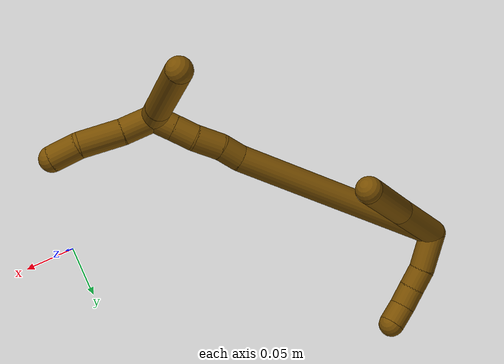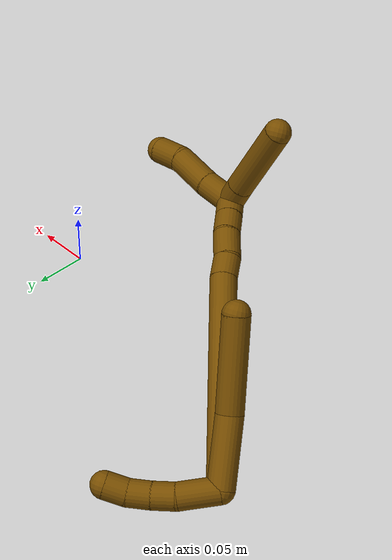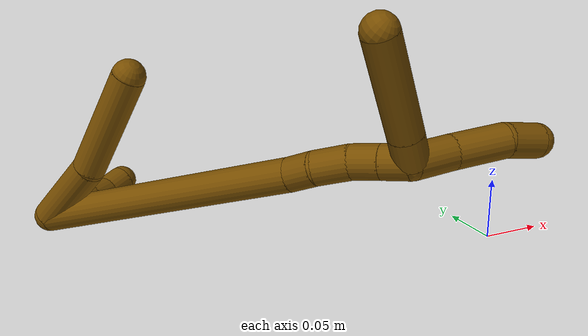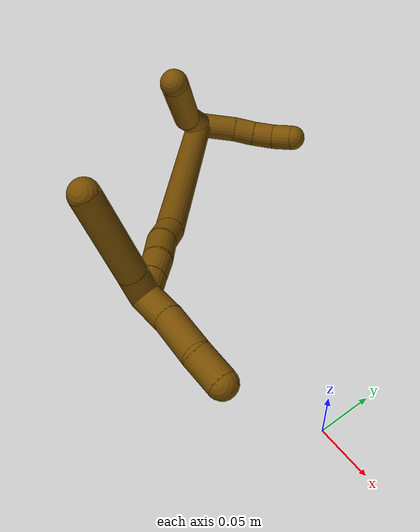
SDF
<sdf version="1.7">
 <world name="default">
  <model name="12">
   <static>0</static>
   <link name="12">
    <collision name="collision-cylinder-e_1_2_8">
     <pose>0.005411 -0.002132 0.031578 0.06741 0.169322 0.005723</pose>
     <geometry><cylinder><radius>0.0125</radius><length>0.064219</length></cylinder></geometry>
     <surface>
      <friction><ode><mu>1.16</mu><mu2>1.16</mu2><slip1>0</slip1><slip2>0</slip2></ode></friction>
      <contact><ode><kp>1e+06</kp><kd>1</kd><max_vel>0</max_vel><min_depth>0.001</min_depth></ode></contact>
     </surface>
    </collision>
    <visual name="visual-cylinder-e_1_2_8">
     <pose>0.005411 -0.002132 0.031578 0.06741 0.169322 0.005723</pose>
     <geometry><cylinder><radius>0.0125</radius><length>0.064219</length></cylinder></geometry>
     <material><ambient>0.466667 0.301961 0 1</ambient></material>
    </visual>
    <collision name="collision-cylinder-e_2_8_6">
     <pose>0.01679 0.003321 0.104947 -0.17955 0.139604 -0.012587</pose>
     <geometry><cylinder><radius>0.0125</radius><length>0.085781</length></cylinder></geometry>
     <surface>
      <friction><ode><mu>1.16</mu><mu2>1.16</mu2><slip1>0</slip1><slip2>0</slip2></ode></friction>
      <contact><ode><kp>1e+06</kp><kd>1</kd><max_vel>0</max_vel><min_depth>0.001</min_depth></ode></contact>
     </surface>
    </collision>
    <visual name="visual-cylinder-e_2_8_6">
     <pose>0.01679 0.003321 0.104947 -0.17955 0.139604 -0.012587</pose>
     <geometry><cylinder><radius>0.0125</radius><length>0.085781</length></cylinder></geometry>
     <material><ambient>0.466667 0.301961 0 1</ambient></material>
    </visual>
    <collision name="collision-cylinder-e_1_2_9">
     <pose>0.016402 0.005351 -0.00739 -2.51492 1.06314 -2.13436</pose>
     <geometry><cylinder><radius>0.0125</radius><length>0.037538</length></cylinder></geometry>
     <surface>
      <friction><ode><mu>1.16</mu><mu2>1.16</mu2><slip1>0</slip1><slip2>0</slip2></ode></friction>
      <contact><ode><kp>1e+06</kp><kd>1</kd><max_vel>0</max_vel><min_depth>0.001</min_depth></ode></contact>
     </surface>
    </collision>
    <visual name="visual-cylinder-e_1_2_9">
     <pose>0.016402 0.005351 -0.00739 -2.51492 1.06314 -2.13436</pose>
     <geometry><cylinder><radius>0.0125</radius><length>0.037538</length></cylinder></geometry>
     <material><ambient>0.466667 0.301961 0 1</ambient></material>
    </visual>
    <collision name="collision-cylinder-e_2_9_10">
     <pose>0.042832 0.012464 -0.017302 -2.53153 1.27315 -2.33628</pose>
     <geometry><cylinder><radius>0.0125</radius><length>0.020979</length></cylinder></geometry>
     <surface>
      <friction><ode><mu>1.16</mu><mu2>1.16</mu2><slip1>0</slip1><slip2>0</slip2></ode></friction>
      <contact><ode><kp>1e+06</kp><kd>1</kd><max_vel>0</max_vel><min_depth>0.001</min_depth></ode></contact>
     </surface>
    </collision>
    <visual name="visual-cylinder-e_2_9_10">
     <pose>0.042832 0.012464 -0.017302 -2.53153 1.27315 -2.33628</pose>
     <geometry><cylinder><radius>0.0125</radius><length>0.020979</length></cylinder></geometry>
     <material><ambient>0.466667 0.301961 0 1</ambient></material>
    </visual>
    <collision name="collision-cylinder-e_3_10_11">
     <pose>0.06298 0.016624 -0.021461 -2.17007 1.29142 -1.91919</pose>
     <geometry><cylinder><radius>0.0125</radius><length>0.021057</length></cylinder></geometry>
     <surface>
      <friction><ode><mu>1.16</mu><mu2>1.16</mu2><slip1>0</slip1><slip2>0</slip2></ode></friction>
      <contact><ode><kp>1e+06</kp><kd>1</kd><max_vel>0</max_vel><min_depth>0.001</min_depth></ode></contact>
     </surface>
    </collision>
    <visual name="visual-cylinder-e_3_10_11">
     <pose>0.06298 0.016624 -0.021461 -2.17007 1.29142 -1.91919</pose>
     <geometry><cylinder><radius>0.0125</radius><length>0.021057</length></cylinder></geometry>
     <material><ambient>0.466667 0.301961 0 1</ambient></material>
    </visual>
    <collision name="collision-cylinder-e_4_11_5">
     <pose>0.082876 0.021905 -0.022441 -1.34669 1.27705 -1.06918</pose>
     <geometry><cylinder><radius>0.0125</radius><length>0.020427</length></cylinder></geometry>
     <surface>
      <friction><ode><mu>1.16</mu><mu2>1.16</mu2><slip1>0</slip1><slip2>0</slip2></ode></friction>
      <contact><ode><kp>1e+06</kp><kd>1</kd><max_vel>0</max_vel><min_depth>0.001</min_depth></ode></contact>
     </surface>
    </collision>
    <visual name="visual-cylinder-e_4_11_5">
     <pose>0.082876 0.021905 -0.022441 -1.34669 1.27705 -1.06918</pose>
     <geometry><cylinder><radius>0.0125</radius><length>0.020427</length></cylinder></geometry>
     <material><ambient>0.466667 0.301961 0 1</ambient></material>
    </visual>
    <collision name="collision-cylinder-e_1_2_12">
     <pose>0.039592 -0.054525 0.081046 0.592211 0.385082 0.118812</pose>
     <geometry><cylinder><radius>0.0125</radius><length>0.210798</length></cylinder></geometry>
     <surface>
      <friction><ode><mu>1.16</mu><mu2>1.16</mu2><slip1>0</slip1><slip2>0</slip2></ode></friction>
      <contact><ode><kp>1e+06</kp><kd>1</kd><max_vel>0</max_vel><min_depth>0.001</min_depth></ode></contact>
     </surface>
    </collision>
    <visual name="visual-cylinder-e_1_2_12">
     <pose>0.039592 -0.054525 0.081046 0.592211 0.385082 0.118812</pose>
     <geometry><cylinder><radius>0.0125</radius><length>0.210798</length></cylinder></geometry>
     <material><ambient>0.466667 0.301961 0 1</ambient></material>
    </visual>
    <collision name="collision-cylinder-e_2_12_13">
     <pose>0.081498 -0.114027 0.171123 0.503733 0.220873 0.057054</pose>
     <geometry><cylinder><radius>0.0125</radius><length>0.021135</length></cylinder></geometry>
     <surface>
      <friction><ode><mu>1.16</mu><mu2>1.16</mu2><slip1>0</slip1><slip2>0</slip2></ode></friction>
      <contact><ode><kp>1e+06</kp><kd>1</kd><max_vel>0</max_vel><min_depth>0.001</min_depth></ode></contact>
     </surface>
    </collision>
    <visual name="visual-cylinder-e_2_12_13">
     <pose>0.081498 -0.114027 0.171123 0.503733 0.220873 0.057054</pose>
     <geometry><cylinder><radius>0.0125</radius><length>0.021135</length></cylinder></geometry>
     <material><ambient>0.466667 0.301961 0 1</ambient></material>
    </visual>
    <collision name="collision-cylinder-e_3_13_14">
     <pose>0.089181 -0.125746 0.19016 0.592854 0.418549 0.129554</pose>
     <geometry><cylinder><radius>0.0125</radius><length>0.026413</length></cylinder></geometry>
     <surface>
      <friction><ode><mu>1.16</mu><mu2>1.16</mu2><slip1>0</slip1><slip2>0</slip2></ode></friction>
      <contact><ode><kp>1e+06</kp><kd>1</kd><max_vel>0</max_vel><min_depth>0.001</min_depth></ode></contact>
     </surface>
    </collision>
    <visual name="visual-cylinder-e_3_13_14">
     <pose>0.089181 -0.125746 0.19016 0.592854 0.418549 0.129554</pose>
     <geometry><cylinder><radius>0.0125</radius><length>0.026413</length></cylinder></geometry>
     <material><ambient>0.466667 0.301961 0 1</ambient></material>
    </visual>
    <collision name="collision-cylinder-e_4_14_15">
     <pose>0.097833 -0.139415 0.207585 0.751208 0.312931 0.124253</pose>
     <geometry><cylinder><radius>0.0125</radius><length>0.021336</length></cylinder></geometry>
     <surface>
      <friction><ode><mu>1.16</mu><mu2>1.16</mu2><slip1>0</slip1><slip2>0</slip2></ode></friction>
      <contact><ode><kp>1e+06</kp><kd>1</kd><max_vel>0</max_vel><min_depth>0.001</min_depth></ode></contact>
     </surface>
    </collision>
    <visual name="visual-cylinder-e_4_14_15">
     <pose>0.097833 -0.139415 0.207585 0.751208 0.312931 0.124253</pose>
     <geometry><cylinder><radius>0.0125</radius><length>0.021336</length></cylinder></geometry>
     <material><ambient>0.466667 0.301961 0 1</ambient></material>
    </visual>
    <collision name="collision-cylinder-e_5_15_1">
     <pose>0.10441 -0.153015 0.221921 0.767413 0.330085 0.134282</pose>
     <geometry><cylinder><radius>0.0125</radius><length>0.020318</length></cylinder></geometry>
     <surface>
      <friction><ode><mu>1.16</mu><mu2>1.16</mu2><slip1>0</slip1><slip2>0</slip2></ode></friction>
      <contact><ode><kp>1e+06</kp><kd>1</kd><max_vel>0</max_vel><min_depth>0.001</min_depth></ode></contact>
     </surface>
    </collision>
    <visual name="visual-cylinder-e_5_15_1">
     <pose>0.10441 -0.153015 0.221921 0.767413 0.330085 0.134282</pose>
     <geometry><cylinder><radius>0.0125</radius><length>0.020318</length></cylinder></geometry>
     <material><ambient>0.466667 0.301961 0 1</ambient></material>
    </visual>
    <collision name="collision-cylinder-e_1_1_16">
     <pose>0.121954 -0.163289 0.233572 0.650277 1.17538 0.441832</pose>
     <geometry><cylinder><radius>0.0125</radius><length>0.030886</length></cylinder></geometry>
     <surface>
      <friction><ode><mu>1.16</mu><mu2>1.16</mu2><slip1>0</slip1><slip2>0</slip2></ode></friction>
      <contact><ode><kp>1e+06</kp><kd>1</kd><max_vel>0</max_vel><min_depth>0.001</min_depth></ode></contact>
     </surface>
    </collision>
    <visual name="visual-cylinder-e_1_1_16">
     <pose>0.121954 -0.163289 0.233572 0.650277 1.17538 0.441832</pose>
     <geometry><cylinder><radius>0.0125</radius><length>0.030886</length></cylinder></geometry>
     <material><ambient>0.466667 0.301961 0 1</ambient></material>
    </visual>
    <collision name="collision-cylinder-e_2_16_17">
     <pose>0.154027 -0.17303 0.246197 0.661263 1.05955 0.396714</pose>
     <geometry><cylinder><radius>0.0125</radius><length>0.040871</length></cylinder></geometry>
     <surface>
      <friction><ode><mu>1.16</mu><mu2>1.16</mu2><slip1>0</slip1><slip2>0</slip2></ode></friction>
      <contact><ode><kp>1e+06</kp><kd>1</kd><max_vel>0</max_vel><min_depth>0.001</min_depth></ode></contact>
     </surface>
    </collision>
    <visual name="visual-cylinder-e_2_16_17">
     <pose>0.154027 -0.17303 0.246197 0.661263 1.05955 0.396714</pose>
     <geometry><cylinder><radius>0.0125</radius><length>0.040871</length></cylinder></geometry>
     <material><ambient>0.466667 0.301961 0 1</ambient></material>
    </visual>
    <collision name="collision-cylinder-e_3_17_4">
     <pose>0.184953 -0.18419 0.255684 1.26301 1.18861 0.918155</pose>
     <geometry><cylinder><radius>0.0125</radius><length>0.028243</length></cylinder></geometry>
     <surface>
      <friction><ode><mu>1.16</mu><mu2>1.16</mu2><slip1>0</slip1><slip2>0</slip2></ode></friction>
      <contact><ode><kp>1e+06</kp><kd>1</kd><max_vel>0</max_vel><min_depth>0.001</min_depth></ode></contact>
     </surface>
    </collision>
    <visual name="visual-cylinder-e_3_17_4">
     <pose>0.184953 -0.18419 0.255684 1.26301 1.18861 0.918155</pose>
     <geometry><cylinder><radius>0.0125</radius><length>0.028243</length></cylinder></geometry>
     <material><ambient>0.466667 0.301961 0 1</ambient></material>
    </visual>
    <collision name="collision-cylinder-e_1_1_18">
     <pose>0.102856 -0.153417 0.237119 -0.648096 -0.436508 0.148716</pose>
     <geometry><cylinder><radius>0.0125</radius><length>0.022925</length></cylinder></geometry>
     <surface>
      <friction><ode><mu>1.16</mu><mu2>1.16</mu2><slip1>0</slip1><slip2>0</slip2></ode></friction>
      <contact><ode><kp>1e+06</kp><kd>1</kd><max_vel>0</max_vel><min_depth>0.001</min_depth></ode></contact>
     </surface>
    </collision>
    <visual name="visual-cylinder-e_1_1_18">
     <pose>0.102856 -0.153417 0.237119 -0.648096 -0.436508 0.148716</pose>
     <geometry><cylinder><radius>0.0125</radius><length>0.022925</length></cylinder></geometry>
     <material><ambient>0.466667 0.301961 0 1</ambient></material>
    </visual>
    <collision name="collision-cylinder-e_2_18_3">
     <pose>0.080886 -0.126317 0.272933 -0.647648 -0.460439 0.157007</pose>
     <geometry><cylinder><radius>0.0125</radius><length>0.077075</length></cylinder></geometry>
     <surface>
      <friction><ode><mu>1.16</mu><mu2>1.16</mu2><slip1>0</slip1><slip2>0</slip2></ode></friction>
      <contact><ode><kp>1e+06</kp><kd>1</kd><max_vel>0</max_vel><min_depth>0.001</min_depth></ode></contact>
     </surface>
    </collision>
    <visual name="visual-cylinder-e_2_18_3">
     <pose>0.080886 -0.126317 0.272933 -0.647648 -0.460439 0.157007</pose>
     <geometry><cylinder><radius>0.0125</radius><length>0.077075</length></cylinder></geometry>
     <material><ambient>0.466667 0.301961 0 1</ambient></material>
    </visual>
    <collision name="collision-sphere-3">
     <pose>0.063763 -0.105488 0.300467 0 -0 0</pose>
     <geometry><sphere><radius>0.0125</radius></sphere></geometry>
     <surface>
      <friction><ode><mu>1.16</mu><mu2>1.16</mu2><slip1>0</slip1><slip2>0</slip2></ode></friction>
      <contact><ode><kp>1e+06</kp><kd>1</kd><max_vel>0</max_vel><min_depth>0.001</min_depth></ode></contact>
     </surface>
    </collision>
    <visual name="visual-sphere-3">
     <pose>0.063763 -0.105488 0.300467 0 -0 0</pose>
     <geometry><sphere><radius>0.0125</radius></sphere></geometry>
     <material><ambient>0.466667 0.301961 0 1</ambient></material>
    </visual>
    <collision name="collision-sphere-11">
     <pose>0.073101 0.019021 -0.023099 0 -0 0</pose>
     <geometry><sphere><radius>0.0125</radius></sphere></geometry>
     <surface>
      <friction><ode><mu>1.16</mu><mu2>1.16</mu2><slip1>0</slip1><slip2>0</slip2></ode></friction>
      <contact><ode><kp>1e+06</kp><kd>1</kd><max_vel>0</max_vel><min_depth>0.001</min_depth></ode></contact>
     </surface>
    </collision>
    <visual name="visual-sphere-11">
     <pose>0.073101 0.019021 -0.023099 0 -0 0</pose>
     <geometry><sphere><radius>0.0125</radius></sphere></geometry>
     <material><ambient>0.466667 0.301961 0 1</ambient></material>
    </visual>
    <collision name="collision-sphere-10">
     <pose>0.05286 0.014227 -0.019824 0 -0 0</pose>
     <geometry><sphere><radius>0.0125</radius></sphere></geometry>
     <surface>
      <friction><ode><mu>1.16</mu><mu2>1.16</mu2><slip1>0</slip1><slip2>0</slip2></ode></friction>
      <contact><ode><kp>1e+06</kp><kd>1</kd><max_vel>0</max_vel><min_depth>0.001</min_depth></ode></contact>
     </surface>
    </collision>
    <visual name="visual-sphere-10">
     <pose>0.05286 0.014227 -0.019824 0 -0 0</pose>
     <geometry><sphere><radius>0.0125</radius></sphere></geometry>
     <material><ambient>0.466667 0.301961 0 1</ambient></material>
    </visual>
    <collision name="collision-sphere-6">
     <pose>0.022758 0.010907 0.146738 0 -0 0</pose>
     <geometry><sphere><radius>0.0125</radius></sphere></geometry>
     <surface>
      <friction><ode><mu>1.16</mu><mu2>1.16</mu2><slip1>0</slip1><slip2>0</slip2></ode></friction>
      <contact><ode><kp>1e+06</kp><kd>1</kd><max_vel>0</max_vel><min_depth>0.001</min_depth></ode></contact>
     </surface>
    </collision>
    <visual name="visual-sphere-6">
     <pose>0.022758 0.010907 0.146738 0 -0 0</pose>
     <geometry><sphere><radius>0.0125</radius></sphere></geometry>
     <material><ambient>0.466667 0.301961 0 1</ambient></material>
    </visual>
    <collision name="collision-sphere-9">
     <pose>0.032804 0.010702 -0.014781 0 -0 0</pose>
     <geometry><sphere><radius>0.0125</radius></sphere></geometry>
     <surface>
      <friction><ode><mu>1.16</mu><mu2>1.16</mu2><slip1>0</slip1><slip2>0</slip2></ode></friction>
      <contact><ode><kp>1e+06</kp><kd>1</kd><max_vel>0</max_vel><min_depth>0.001</min_depth></ode></contact>
     </surface>
    </collision>
    <visual name="visual-sphere-9">
     <pose>0.032804 0.010702 -0.014781 0 -0 0</pose>
     <geometry><sphere><radius>0.0125</radius></sphere></geometry>
     <material><ambient>0.466667 0.301961 0 1</ambient></material>
    </visual>
    <collision name="collision-sphere-2">
     <geometry><sphere><radius>0.0125</radius></sphere></geometry>
     <surface>
      <friction><ode><mu>1.16</mu><mu2>1.16</mu2><slip1>0</slip1><slip2>0</slip2></ode></friction>
      <contact><ode><kp>1e+06</kp><kd>1</kd><max_vel>0</max_vel><min_depth>0.001</min_depth></ode></contact>
     </surface>
    </collision>
    <visual name="visual-sphere-2">
     <geometry><sphere><radius>0.0125</radius></sphere></geometry>
     <material><ambient>0.466667 0.301961 0 1</ambient></material>
    </visual>
    <collision name="collision-sphere-8">
     <pose>0.010822 -0.004264 0.063156 0 -0 0</pose>
     <geometry><sphere><radius>0.0125</radius></sphere></geometry>
     <surface>
      <friction><ode><mu>1.16</mu><mu2>1.16</mu2><slip1>0</slip1><slip2>0</slip2></ode></friction>
      <contact><ode><kp>1e+06</kp><kd>1</kd><max_vel>0</max_vel><min_depth>0.001</min_depth></ode></contact>
     </surface>
    </collision>
    <visual name="visual-sphere-8">
     <pose>0.010822 -0.004264 0.063156 0 -0 0</pose>
     <geometry><sphere><radius>0.0125</radius></sphere></geometry>
     <material><ambient>0.466667 0.301961 0 1</ambient></material>
    </visual>
    <collision name="collision-sphere-5">
     <pose>0.092652 0.024788 -0.021784 0 -0 0</pose>
     <geometry><sphere><radius>0.0125</radius></sphere></geometry>
     <surface>
      <friction><ode><mu>1.16</mu><mu2>1.16</mu2><slip1>0</slip1><slip2>0</slip2></ode></friction>
      <contact><ode><kp>1e+06</kp><kd>1</kd><max_vel>0</max_vel><min_depth>0.001</min_depth></ode></contact>
     </surface>
    </collision>
    <visual name="visual-sphere-5">
     <pose>0.092652 0.024788 -0.021784 0 -0 0</pose>
     <geometry><sphere><radius>0.0125</radius></sphere></geometry>
     <material><ambient>0.466667 0.301961 0 1</ambient></material>
    </visual>
    <collision name="collision-sphere-12">
     <pose>0.079183 -0.10905 0.162093 0 -0 0</pose>
     <geometry><sphere><radius>0.0125</radius></sphere></geometry>
     <surface>
      <friction><ode><mu>1.16</mu><mu2>1.16</mu2><slip1>0</slip1><slip2>0</slip2></ode></friction>
      <contact><ode><kp>1e+06</kp><kd>1</kd><max_vel>0</max_vel><min_depth>0.001</min_depth></ode></contact>
     </surface>
    </collision>
    <visual name="visual-sphere-12">
     <pose>0.079183 -0.10905 0.162093 0 -0 0</pose>
     <geometry><sphere><radius>0.0125</radius></sphere></geometry>
     <material><ambient>0.466667 0.301961 0 1</ambient></material>
    </visual>
    <collision name="collision-sphere-13">
     <pose>0.083813 -0.119004 0.180153 0 -0 0</pose>
     <geometry><sphere><radius>0.0125</radius></sphere></geometry>
     <surface>
      <friction><ode><mu>1.16</mu><mu2>1.16</mu2><slip1>0</slip1><slip2>0</slip2></ode></friction>
      <contact><ode><kp>1e+06</kp><kd>1</kd><max_vel>0</max_vel><min_depth>0.001</min_depth></ode></contact>
     </surface>
    </collision>
    <visual name="visual-sphere-13">
     <pose>0.083813 -0.119004 0.180153 0 -0 0</pose>
     <geometry><sphere><radius>0.0125</radius></sphere></geometry>
     <material><ambient>0.466667 0.301961 0 1</ambient></material>
    </visual>
    <collision name="collision-sphere-14">
     <pose>0.094549 -0.132487 0.200167 0 -0 0</pose>
     <geometry><sphere><radius>0.0125</radius></sphere></geometry>
     <surface>
      <friction><ode><mu>1.16</mu><mu2>1.16</mu2><slip1>0</slip1><slip2>0</slip2></ode></friction>
      <contact><ode><kp>1e+06</kp><kd>1</kd><max_vel>0</max_vel><min_depth>0.001</min_depth></ode></contact>
     </surface>
    </collision>
    <visual name="visual-sphere-14">
     <pose>0.094549 -0.132487 0.200167 0 -0 0</pose>
     <geometry><sphere><radius>0.0125</radius></sphere></geometry>
     <material><ambient>0.466667 0.301961 0 1</ambient></material>
    </visual>
    <collision name="collision-sphere-15">
     <pose>0.101117 -0.146343 0.215004 0 -0 0</pose>
     <geometry><sphere><radius>0.0125</radius></sphere></geometry>
     <surface>
      <friction><ode><mu>1.16</mu><mu2>1.16</mu2><slip1>0</slip1><slip2>0</slip2></ode></friction>
      <contact><ode><kp>1e+06</kp><kd>1</kd><max_vel>0</max_vel><min_depth>0.001</min_depth></ode></contact>
     </surface>
    </collision>
    <visual name="visual-sphere-15">
     <pose>0.101117 -0.146343 0.215004 0 -0 0</pose>
     <geometry><sphere><radius>0.0125</radius></sphere></geometry>
     <material><ambient>0.466667 0.301961 0 1</ambient></material>
    </visual>
    <collision name="collision-sphere-1">
     <pose>0.107702 -0.159687 0.228837 0 -0 0</pose>
     <geometry><sphere><radius>0.0125</radius></sphere></geometry>
     <surface>
      <friction><ode><mu>1.16</mu><mu2>1.16</mu2><slip1>0</slip1><slip2>0</slip2></ode></friction>
      <contact><ode><kp>1e+06</kp><kd>1</kd><max_vel>0</max_vel><min_depth>0.001</min_depth></ode></contact>
     </surface>
    </collision>
    <visual name="visual-sphere-1">
     <pose>0.107702 -0.159687 0.228837 0 -0 0</pose>
     <geometry><sphere><radius>0.0125</radius></sphere></geometry>
     <material><ambient>0.466667 0.301961 0 1</ambient></material>
    </visual>
    <collision name="collision-sphere-18">
     <pose>0.09801 -0.147146 0.2454 0 -0 0</pose>
     <geometry><sphere><radius>0.0125</radius></sphere></geometry>
     <surface>
      <friction><ode><mu>1.16</mu><mu2>1.16</mu2><slip1>0</slip1><slip2>0</slip2></ode></friction>
      <contact><ode><kp>1e+06</kp><kd>1</kd><max_vel>0</max_vel><min_depth>0.001</min_depth></ode></contact>
     </surface>
    </collision>
    <visual name="visual-sphere-18">
     <pose>0.09801 -0.147146 0.2454 0 -0 0</pose>
     <geometry><sphere><radius>0.0125</radius></sphere></geometry>
     <material><ambient>0.466667 0.301961 0 1</ambient></material>
    </visual>
    <collision name="collision-sphere-16">
     <pose>0.136205 -0.16689 0.238306 0 -0 0</pose>
     <geometry><sphere><radius>0.0125</radius></sphere></geometry>
     <surface>
      <friction><ode><mu>1.16</mu><mu2>1.16</mu2><slip1>0</slip1><slip2>0</slip2></ode></friction>
      <contact><ode><kp>1e+06</kp><kd>1</kd><max_vel>0</max_vel><min_depth>0.001</min_depth></ode></contact>
     </surface>
    </collision>
    <visual name="visual-sphere-16">
     <pose>0.136205 -0.16689 0.238306 0 -0 0</pose>
     <geometry><sphere><radius>0.0125</radius></sphere></geometry>
     <material><ambient>0.466667 0.301961 0 1</ambient></material>
    </visual>
    <collision name="collision-sphere-17">
     <pose>0.17185 -0.17917 0.254088 0 -0 0</pose>
     <geometry><sphere><radius>0.0125</radius></sphere></geometry>
     <surface>
      <friction><ode><mu>1.16</mu><mu2>1.16</mu2><slip1>0</slip1><slip2>0</slip2></ode></friction>
      <contact><ode><kp>1e+06</kp><kd>1</kd><max_vel>0</max_vel><min_depth>0.001</min_depth></ode></contact>
     </surface>
    </collision>
    <visual name="visual-sphere-17">
     <pose>0.17185 -0.17917 0.254088 0 -0 0</pose>
     <geometry><sphere><radius>0.0125</radius></sphere></geometry>
     <material><ambient>0.466667 0.301961 0 1</ambient></material>
    </visual>
    <collision name="collision-sphere-4">
     <pose>0.198055 -0.189209 0.257279 0 -0 0</pose>
     <geometry><sphere><radius>0.0125</radius></sphere></geometry>
     <surface>
      <friction><ode><mu>1.16</mu><mu2>1.16</mu2><slip1>0</slip1><slip2>0</slip2></ode></friction>
      <contact><ode><kp>1e+06</kp><kd>1</kd><max_vel>0</max_vel><min_depth>0.001</min_depth></ode></contact>
     </surface>
    </collision>
    <visual name="visual-sphere-4">
     <pose>0.198055 -0.189209 0.257279 0 -0 0</pose>
     <geometry><sphere><radius>0.0125</radius></sphere></geometry>
     <material><ambient>0.466667 0.301961 0 1</ambient></material>
    </visual>
    <inertial>
     <pose>0.062442 -0.069961 0.126815 0 -0 0</pose>
     <mass>0.75</mass>
     <inertia>
      <ixx>0.000967</ixx>
      <ixy>0</ixy>
      <ixz>0</ixz>
      <iyy>0.000898</iyy>
      <iyz>0</iyz>
      <izz>0.000104</izz>
     </inertia>
    </inertial>
   </link>
   <pose>-0.333192 0.129723 0.029279 0.673125 0.011257 0.389902</pose>
  </model>
 </world>
</sdf>
